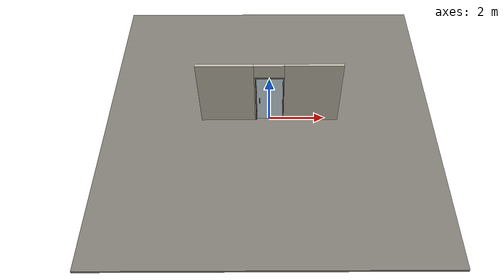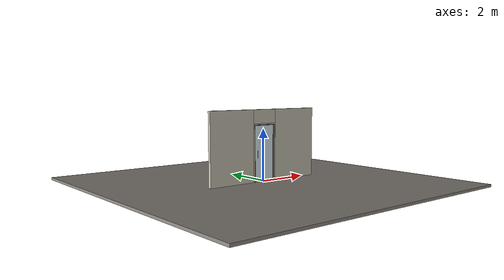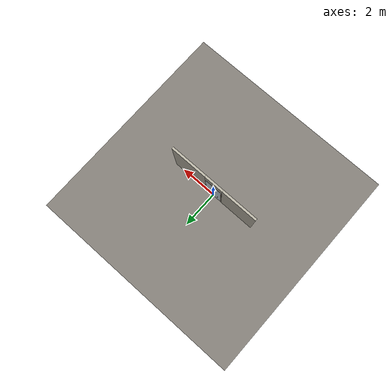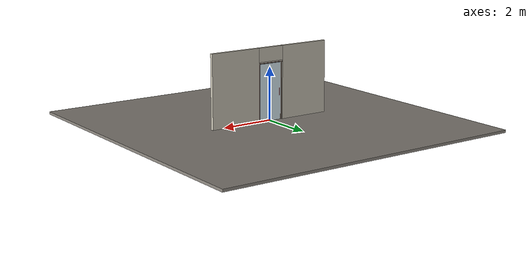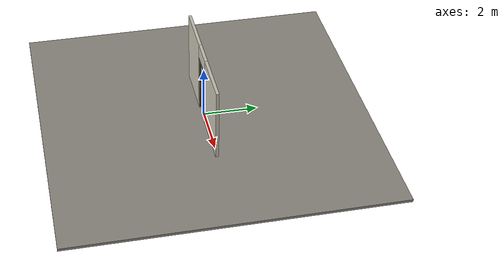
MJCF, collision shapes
<?xml version="1.0" ?>
<mujoco model="db0216_swing_single_minimal">
  <compiler angle="radian" meshdir="../../hardware" texturedir="../../textures" autolimits="true" inertiafromgeom="false"/>
  <option timestep="0.002" integrator="implicitfast" cone="elliptic" impratio="10" noslip_iterations="3">
    <flag multiccd="enable"/>
  </option>
  <size memory="16M"/>
  <default>
    <geom condim="4" solref="0.005 1" solimp="0.95 0.99 0.001"/>
    <joint solreflimit="0.005 1" solimplimit="0.95 0.99 0.001"/>
    <tendon solreflimit="0.005 1"/>
    <equality solref="0.002 1"/>
  </default>
  <visual>
    <headlight ambient="0.4 0.4 0.4" diffuse="0.7 0.7 0.7" specular="0.2 0.2 0.2"/>
    <quality shadowsize="4096"/>
    <map znear="0.01" zfar="60"/>
  </visual>
  <asset>
    <mesh name="pull_f8d79d6331" file="pull_f8d79d6331.obj"/>
    <material name="mat_floor" rgba="0.55 0.53 0.5 1" specular="0.2" shininess="0.15" reflectance="0"/>
    <material name="mat_wall" rgba="0.78 0.76 0.7 1" specular="0.2" shininess="0.1" reflectance="0"/>
    <material name="mat_leaf" rgba="0.85 0.92 0.95 0.25" specular="0.2" shininess="0.95" reflectance="0.1"/>
    <material name="mat_glass_leaf" rgba="0.85 0.92 0.95 0.25" specular="0.2" shininess="0.95" reflectance="0.1"/>
    <material name="mat_patch" rgba="0.75 0.76 0.77 1" specular="0.8" shininess="0.65" reflectance="0.4"/>
    <material name="mat_hinge" rgba="0.65 0.66 0.68 1" specular="0.74" shininess="0.5" reflectance="0.36"/>
    <material name="mat_op_stainless" rgba="0.75 0.76 0.77 1" specular="0.8" shininess="0.65" reflectance="0.4"/>
    <material name="mat_maglock" rgba="0.22 0.17 0.13 1" specular="0.8" shininess="0.6" reflectance="0.4"/>
    <material name="mat_frame" rgba="0.22 0.17 0.13 1" specular="0.8" shininess="0.6" reflectance="0.4"/>
    <material name="mat_closer" rgba="0.22 0.17 0.13 1" specular="0.8" shininess="0.6" reflectance="0.4"/>
    <material name="mat_sign" rgba="0.75 0.76 0.77 1" specular="0.8" shininess="0.65" reflectance="0.4"/>
    <texture name="skybox" type="skybox" builtin="gradient" rgb1="0.6 0.7 0.85" rgb2="0.9 0.92 0.95" width="256" height="256"/>
  </asset>
  <worldbody>
    <light name="sun" pos="1.5 -2.5 4" dir="-0.3 0.5 -0.8" directional="true" diffuse="0.8 0.8 0.8" specular="0.3 0.3 0.3" castshadow="true"/>
    <light name="fill" pos="-1.5 2.5 3" dir="0.3 -0.5 -0.7" directional="true" diffuse="0.35 0.35 0.4" castshadow="false"/>
    <camera name="robot_view" pos="0 -2.665812 1.812087" xyaxes="1 0 0 0 0.26963 0.962964" fovy="52"/>
    <camera name="far_view" pos="0 2.609812 1.812087" xyaxes="-1 0 0 0 -0.26963 0.962964" fovy="52"/>
    <camera name="iso" pos="-2.004737 -2.243762 2.234138" xyaxes="0.741536 -0.670913 0 0.242917 0.268487 0.932151" fovy="46"/>
    <camera name="detail_handle" pos="-0.17 -0.8975 1.347" xyaxes="0.97561 0.219512 0 -0.070934 0.315262 0.94635" fovy="38"/>
    <geom name="floor" type="box" size="6 6 0.05" pos="0 0 -0.05" material="mat_floor" group="0" contype="1" conaffinity="1" friction="0.8 0.005 0.0001" density="2400"/>
    <geom name="wall_left" type="box" size="0.9815 0.0575 1.3735" pos="-1.5185 -0.028 1.3735" material="mat_wall" group="0" contype="1" conaffinity="1" friction="0.6 0.005 0.0001" density="800"/>
    <geom name="wall_right" type="box" size="0.9965 0.0575 1.3735" pos="1.5035 -0.028 1.3735" material="mat_wall" group="0" contype="1" conaffinity="1" friction="0.6 0.005 0.0001" density="800"/>
    <geom name="wall_header" type="box" size="0.522 0.0575 0.2625" pos="-0.015 -0.028 2.4845" material="mat_wall" group="0" contype="1" conaffinity="1" friction="0.6 0.005 0.0001" density="800"/>
    <geom name="jamb_hinge" type="box" size="0.0225 0.0575 1.0735" pos="0.4845 -0.028 1.0735" material="mat_frame" group="0" contype="1" conaffinity="1" friction="0.6 0.005 0.0001" density="300"/>
    <geom name="jamb_strike" type="box" size="0.0225 0.0575 1.0735" pos="-0.4845 -0.028 1.0735" material="mat_frame" group="0" contype="1" conaffinity="1" friction="0.6 0.005 0.0001" density="300"/>
    <geom name="stud_strike" type="box" size="0.015 0.0575 1.0735" pos="-0.522 -0.028 1.0735" material="mat_wall" group="0" contype="1" conaffinity="1" friction="0.6 0.005 0.0001" density="500"/>
    <geom name="jamb_head" type="box" size="0.522 0.0575 0.0225" pos="-0.015 -0.028 2.1695" material="mat_frame" group="0" contype="1" conaffinity="1" friction="0.6 0.005 0.0001" density="300"/>
    <geom name="head_stud" type="box" size="0.522 0.0575 0.015" pos="-0.015 -0.028 2.207" material="mat_wall" group="0" contype="1" conaffinity="1" friction="0.6 0.005 0.0001" density="500"/>
    <site name="approach_point" pos="0 -1.5 0" quat="1 0 0 0" size="0.05" rgba="0.2 0.9 0.2 0.5" group="4"/>
    <site name="goal_point" pos="0 1.5 0" quat="1 0 0 0" size="0.05" rgba="0.2 0.9 0.2 0.5" group="4"/>
    <site name="door_plane_center" pos="0 0 1.0735" quat="1 0 0 0" size="0.02" rgba="0.2 0.9 0.2 0.5" group="4"/>
    <body name="leaf" pos="0.462 0 0">
      <inertial pos="-0.470596 0 1.075729" mass="100.478242" quat="0.500078 -0.500078 -0.499922 -0.499922" diaginertia="7.18921257 37.048849539 44.155607972"/>
      <joint name="leaf_hinge" type="hinge" axis="0 0 -1" pos="-0.019 0.0325 0" limited="true" range="0 2.443461" solreflimit="0.02 1" damping="10.268966" frictionloss="1.665092" stiffness="31.601806" springref="-2.033428" armature="0.02"/>
      <geom name="leaf_glass" type="box" size="0.457 0.0225 1.067" pos="-0.46 0 1.076" material="mat_glass_leaf" group="0" contype="1" conaffinity="1" friction="0.4 0.005 0.0001" density="1"/>
      <geom name="leaf_pull_n" type="mesh" mesh="pull_f8d79d6331" pos="-0.812 -0.0225 1.067" quat="0 0 -0.707107 0.707107" material="mat_op_stainless" group="1" contype="0" conaffinity="0" density="3000"/>
      <geom name="leaf_pull_col_n" type="capsule" size="0.0125 0.13" pos="-0.812 -0.0975 1.067" material="mat_op_stainless" group="3" contype="1" conaffinity="1" rgba="0.8 0.3 0.3 0.25" friction="0.7 0.01 0.0001" density="3000"/>
      <geom name="leaf_pull_p" type="mesh" mesh="pull_f8d79d6331" pos="-0.812 0.0225 1.067" quat="0 0 0.707107 0.707107" material="mat_op_stainless" group="1" contype="0" conaffinity="0" density="3000"/>
      <geom name="leaf_pull_col_p" type="capsule" size="0.0125 0.13" pos="-0.812 0.0975 1.067" material="mat_op_stainless" group="3" contype="1" conaffinity="1" rgba="0.8 0.3 0.3 0.25" friction="0.7 0.01 0.0001" density="3000"/>
      <site name="leaf_pull_grip_n" pos="-0.812 -0.0975 1.067" quat="1 0 0 0" size="0.012" rgba="0.2 0.9 0.2 0.5" group="4"/>
      <site name="leaf_pull_grip_p" pos="-0.812 0.0975 1.067" quat="1 0 0 0" size="0.012" rgba="0.2 0.9 0.2 0.5" group="4"/>
      <site name="leaf_edge_mid" pos="-0.917 0 1.067" quat="1 0 0 0" size="0.02" rgba="0.2 0.9 0.2 0.5" group="4"/>
    </body>
  </worldbody>
  <equality>
    <weld name="leaf_maglock" body1="leaf" body2="world" active="true"/>
  </equality>
  <sensor>
    <jointpos name="leaf_hinge_pos" joint="leaf_hinge"/>
    <jointvel name="leaf_hinge_vel" joint="leaf_hinge"/>
  </sensor>
</mujoco>
